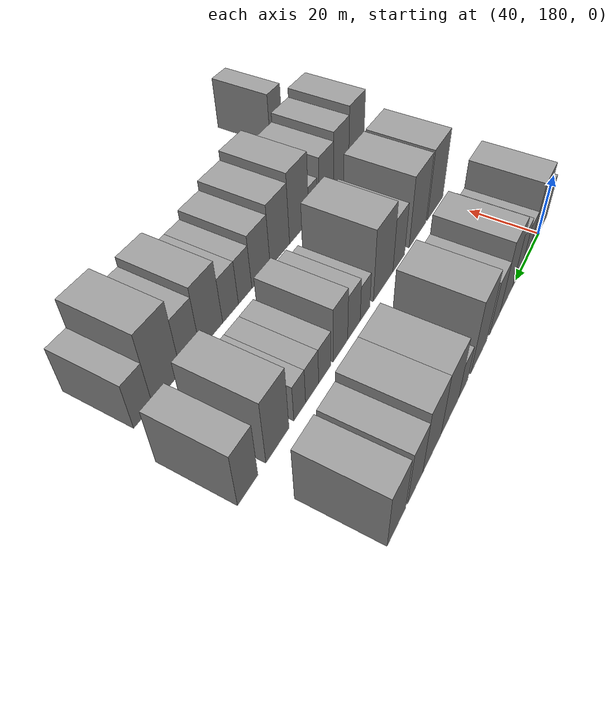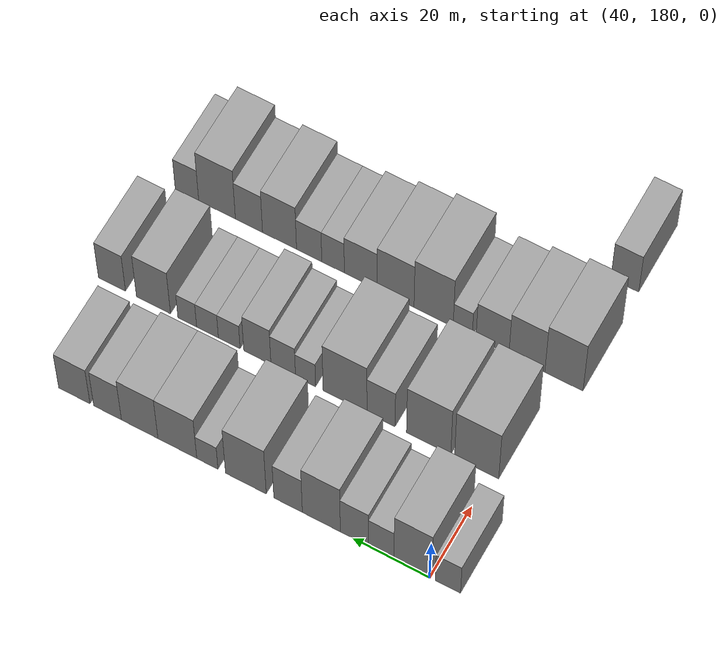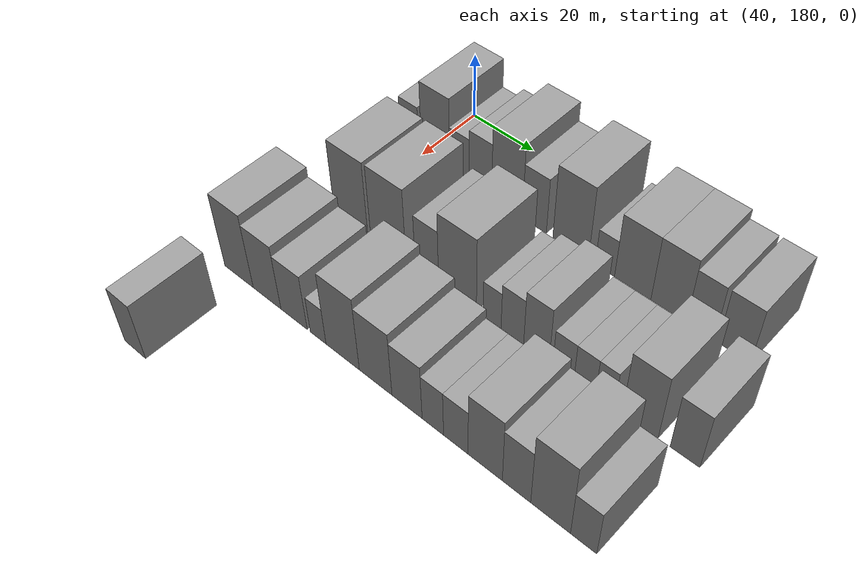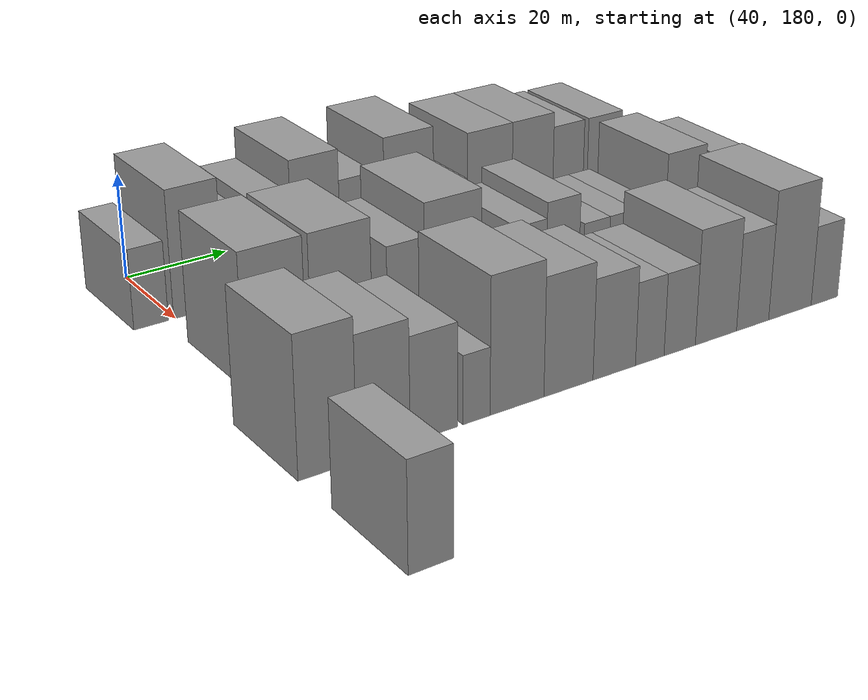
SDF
<sdf version="1.6">
 <world name="default">
  <model name="building_80">
   <static>1</static>
   <pose>50.0000 175.4133 0 0.000000 0.000000 0.000000</pose>
   <link name="link">
    <pose>0 0 7.50 0 0 0</pose>
    <collision name="collision"><geometry><box><size>20.0000 6.4632 15.0000</size></box></geometry></collision>
    <visual name="visual">
     <cast_shadows>0</cast_shadows>
     <geometry><box><size>20.0000 6.4632 15.0000</size></box></geometry>
     <material>
      <script>
       <uri>model://grey_wall/materials/scripts</uri>
       <uri>model://grey_wall/materials/textures</uri>
       <name>vrc/grey_wall</name>
      </script>
     </material>
    </visual>
   </link>
  </model>
  <model name="building_81">
   <static>1</static>
   <pose>50.0000 184.4984 0 0.000000 0.000000 0.000000</pose>
   <link name="link">
    <pose>0 0 12.00 0 0 0</pose>
    <collision name="collision"><geometry><box><size>20.0000 9.7070 24.0000</size></box></geometry></collision>
    <visual name="visual">
     <cast_shadows>0</cast_shadows>
     <geometry><box><size>20.0000 9.7070 24.0000</size></box></geometry>
     <material>
      <script>
       <uri>model://grey_wall/materials/scripts</uri>
       <uri>model://grey_wall/materials/textures</uri>
       <name>vrc/grey_wall</name>
      </script>
     </material>
    </visual>
   </link>
  </model>
  <model name="building_82">
   <static>1</static>
   <pose>50.0000 192.6373 0 0.000000 0.000000 0.000000</pose>
   <link name="link">
    <pose>0 0 7.50 0 0 0</pose>
    <collision name="collision"><geometry><box><size>20.0000 6.5709 15.0000</size></box></geometry></collision>
    <visual name="visual">
     <cast_shadows>0</cast_shadows>
     <geometry><box><size>20.0000 6.5709 15.0000</size></box></geometry>
     <material>
      <script>
       <uri>model://grey_wall/materials/scripts</uri>
       <uri>model://grey_wall/materials/textures</uri>
       <name>vrc/grey_wall</name>
      </script>
     </material>
    </visual>
   </link>
  </model>
  <model name="building_83">
   <static>1</static>
   <pose>50.0000 199.5949 0 0.000000 0.000000 0.000000</pose>
   <link name="link">
    <pose>0 0 9.00 0 0 0</pose>
    <collision name="collision"><geometry><box><size>20.0000 7.3442 18.0000</size></box></geometry></collision>
    <visual name="visual">
     <cast_shadows>0</cast_shadows>
     <geometry><box><size>20.0000 7.3442 18.0000</size></box></geometry>
     <material>
      <script>
       <uri>model://grey_wall/materials/scripts</uri>
       <uri>model://grey_wall/materials/textures</uri>
       <name>vrc/grey_wall</name>
      </script>
     </material>
    </visual>
   </link>
  </model>
  <model name="building_84">
   <static>1</static>
   <pose>50.0000 208.2229 0 0.000000 0.000000 0.000000</pose>
   <link name="link">
    <pose>0 0 12.00 0 0 0</pose>
    <collision name="collision"><geometry><box><size>20.0000 9.9118 24.0000</size></box></geometry></collision>
    <visual name="visual">
     <cast_shadows>0</cast_shadows>
     <geometry><box><size>20.0000 9.9118 24.0000</size></box></geometry>
     <material>
      <script>
       <uri>model://grey_wall/materials/scripts</uri>
       <uri>model://grey_wall/materials/textures</uri>
       <name>vrc/grey_wall</name>
      </script>
     </material>
    </visual>
   </link>
  </model>
  <model name="building_85">
   <static>1</static>
   <pose>50.0000 216.9162 0 0.000000 0.000000 0.000000</pose>
   <link name="link">
    <pose>0 0 9.00 0 0 0</pose>
    <collision name="collision"><geometry><box><size>20.0000 7.4749 18.0000</size></box></geometry></collision>
    <visual name="visual">
     <cast_shadows>0</cast_shadows>
     <geometry><box><size>20.0000 7.4749 18.0000</size></box></geometry>
     <material>
      <script>
       <uri>model://grey_wall/materials/scripts</uri>
       <uri>model://grey_wall/materials/textures</uri>
       <name>vrc/grey_wall</name>
      </script>
     </material>
    </visual>
   </link>
  </model>
  <model name="building_86">
   <static>1</static>
   <pose>50.0000 228.0209 0 0.000000 0.000000 0.000000</pose>
   <link name="link">
    <pose>0 0 12.00 0 0 0</pose>
    <collision name="collision"><geometry><box><size>20.0000 10.7344 24.0000</size></box></geometry></collision>
    <visual name="visual">
     <cast_shadows>0</cast_shadows>
     <geometry><box><size>20.0000 10.7344 24.0000</size></box></geometry>
     <material>
      <script>
       <uri>model://grey_wall/materials/scripts</uri>
       <uri>model://grey_wall/materials/textures</uri>
       <name>vrc/grey_wall</name>
      </script>
     </material>
    </visual>
   </link>
  </model>
  <model name="building_87">
   <static>1</static>
   <pose>50.0000 238.1948 0 0.000000 0.000000 0.000000</pose>
   <link name="link">
    <pose>0 0 6.00 0 0 0</pose>
    <collision name="collision"><geometry><box><size>20.0000 5.6133 12.0000</size></box></geometry></collision>
    <visual name="visual">
     <cast_shadows>0</cast_shadows>
     <geometry><box><size>20.0000 5.6133 12.0000</size></box></geometry>
     <material>
      <script>
       <uri>model://grey_wall/materials/scripts</uri>
       <uri>model://grey_wall/materials/textures</uri>
       <name>vrc/grey_wall</name>
      </script>
     </material>
    </visual>
   </link>
  </model>
  <model name="building_88">
   <static>1</static>
   <pose>50.0000 246.1663 0 0.000000 0.000000 0.000000</pose>
   <link name="link">
    <pose>0 0 10.50 0 0 0</pose>
    <collision name="collision"><geometry><box><size>20.0000 10.3297 21.0000</size></box></geometry></collision>
    <visual name="visual">
     <cast_shadows>0</cast_shadows>
     <geometry><box><size>20.0000 10.3297 21.0000</size></box></geometry>
     <material>
      <script>
       <uri>model://grey_wall/materials/scripts</uri>
       <uri>model://grey_wall/materials/textures</uri>
       <name>vrc/grey_wall</name>
      </script>
     </material>
    </visual>
   </link>
  </model>
  <model name="building_89">
   <static>1</static>
   <pose>50.0000 256.2090 0 0.000000 0.000000 0.000000</pose>
   <link name="link">
    <pose>0 0 10.50 0 0 0</pose>
    <collision name="collision"><geometry><box><size>20.0000 9.7558 21.0000</size></box></geometry></collision>
    <visual name="visual">
     <cast_shadows>0</cast_shadows>
     <geometry><box><size>20.0000 9.7558 21.0000</size></box></geometry>
     <material>
      <script>
       <uri>model://grey_wall/materials/scripts</uri>
       <uri>model://grey_wall/materials/textures</uri>
       <name>vrc/grey_wall</name>
      </script>
     </material>
    </visual>
   </link>
  </model>
  <model name="building_90">
   <static>1</static>
   <pose>50.0000 264.7991 0 0.000000 0.000000 0.000000</pose>
   <link name="link">
    <pose>0 0 9.00 0 0 0</pose>
    <collision name="collision"><geometry><box><size>20.0000 7.4243 18.0000</size></box></geometry></collision>
    <visual name="visual">
     <cast_shadows>0</cast_shadows>
     <geometry><box><size>20.0000 7.4243 18.0000</size></box></geometry>
     <material>
      <script>
       <uri>model://grey_wall/materials/scripts</uri>
       <uri>model://grey_wall/materials/textures</uri>
       <name>vrc/grey_wall</name>
      </script>
     </material>
    </visual>
   </link>
  </model>
  <model name="building_91">
   <static>1</static>
   <pose>50.0000 273.7205 0 0.000000 0.000000 0.000000</pose>
   <link name="link">
    <pose>0 0 9.00 0 0 0</pose>
    <collision name="collision"><geometry><box><size>20.0000 8.4185 18.0000</size></box></geometry></collision>
    <visual name="visual">
     <cast_shadows>0</cast_shadows>
     <geometry><box><size>20.0000 8.4185 18.0000</size></box></geometry>
     <material>
      <script>
       <uri>model://grey_wall/materials/scripts</uri>
       <uri>model://grey_wall/materials/textures</uri>
       <name>vrc/grey_wall</name>
      </script>
     </material>
    </visual>
   </link>
  </model>
  <model name="building_191">
   <static>1</static>
   <pose>79.0000 183.6266 0 0.000000 0.000000 0.000000</pose>
   <link name="link">
    <pose>0 0 12.00 0 0 0</pose>
    <collision name="collision"><geometry><box><size>20.0000 11.4806 24.0000</size></box></geometry></collision>
    <visual name="visual">
     <cast_shadows>0</cast_shadows>
     <geometry><box><size>20.0000 11.4806 24.0000</size></box></geometry>
     <material>
      <script>
       <uri>model://grey_wall/materials/scripts</uri>
       <uri>model://grey_wall/materials/textures</uri>
       <name>vrc/grey_wall</name>
      </script>
     </material>
    </visual>
   </link>
  </model>
  <model name="building_192">
   <static>1</static>
   <pose>79.0000 196.1666 0 0.000000 0.000000 0.000000</pose>
   <link name="link">
    <pose>0 0 12.00 0 0 0</pose>
    <collision name="collision"><geometry><box><size>20.0000 11.5995 24.0000</size></box></geometry></collision>
    <visual name="visual">
     <cast_shadows>0</cast_shadows>
     <geometry><box><size>20.0000 11.5995 24.0000</size></box></geometry>
     <material>
      <script>
       <uri>model://grey_wall/materials/scripts</uri>
       <uri>model://grey_wall/materials/textures</uri>
       <name>vrc/grey_wall</name>
      </script>
     </material>
    </visual>
   </link>
  </model>
  <model name="building_193">
   <static>1</static>
   <pose>79.0000 208.6754 0 0.000000 0.000000 0.000000</pose>
   <link name="link">
    <pose>0 0 9.00 0 0 0</pose>
    <collision name="collision"><geometry><box><size>20.0000 7.4181 18.0000</size></box></geometry></collision>
    <visual name="visual">
     <cast_shadows>0</cast_shadows>
     <geometry><box><size>20.0000 7.4181 18.0000</size></box></geometry>
     <material>
      <script>
       <uri>model://grey_wall/materials/scripts</uri>
       <uri>model://grey_wall/materials/textures</uri>
       <name>vrc/grey_wall</name>
      </script>
     </material>
    </visual>
   </link>
  </model>
  <model name="building_194">
   <static>1</static>
   <pose>79.0000 218.1799 0 0.000000 0.000000 0.000000</pose>
   <link name="link">
    <pose>0 0 12.00 0 0 0</pose>
    <collision name="collision"><geometry><box><size>20.0000 11.5909 24.0000</size></box></geometry></collision>
    <visual name="visual">
     <cast_shadows>0</cast_shadows>
     <geometry><box><size>20.0000 11.5909 24.0000</size></box></geometry>
     <material>
      <script>
       <uri>model://grey_wall/materials/scripts</uri>
       <uri>model://grey_wall/materials/textures</uri>
       <name>vrc/grey_wall</name>
      </script>
     </material>
    </visual>
   </link>
  </model>
  <model name="building_195">
   <static>1</static>
   <pose>79.0000 228.6449 0 0.000000 0.000000 0.000000</pose>
   <link name="link">
    <pose>0 0 6.00 0 0 0</pose>
    <collision name="collision"><geometry><box><size>20.0000 5.3390 12.0000</size></box></geometry></collision>
    <visual name="visual">
     <cast_shadows>0</cast_shadows>
     <geometry><box><size>20.0000 5.3390 12.0000</size></box></geometry>
     <material>
      <script>
       <uri>model://grey_wall/materials/scripts</uri>
       <uri>model://grey_wall/materials/textures</uri>
       <name>vrc/grey_wall</name>
      </script>
     </material>
    </visual>
   </link>
  </model>
  <model name="building_196">
   <static>1</static>
   <pose>79.0000 234.5920 0 0.000000 0.000000 0.000000</pose>
   <link name="link">
    <pose>0 0 7.50 0 0 0</pose>
    <collision name="collision"><geometry><box><size>20.0000 6.5551 15.0000</size></box></geometry></collision>
    <visual name="visual">
     <cast_shadows>0</cast_shadows>
     <geometry><box><size>20.0000 6.5551 15.0000</size></box></geometry>
     <material>
      <script>
       <uri>model://grey_wall/materials/scripts</uri>
       <uri>model://grey_wall/materials/textures</uri>
       <name>vrc/grey_wall</name>
      </script>
     </material>
    </visual>
   </link>
  </model>
  <model name="building_197">
   <static>1</static>
   <pose>79.0000 241.4972 0 0.000000 0.000000 0.000000</pose>
   <link name="link">
    <pose>0 0 9.00 0 0 0</pose>
    <collision name="collision"><geometry><box><size>20.0000 7.2553 18.0000</size></box></geometry></collision>
    <visual name="visual">
     <cast_shadows>0</cast_shadows>
     <geometry><box><size>20.0000 7.2553 18.0000</size></box></geometry>
     <material>
      <script>
       <uri>model://grey_wall/materials/scripts</uri>
       <uri>model://grey_wall/materials/textures</uri>
       <name>vrc/grey_wall</name>
      </script>
     </material>
    </visual>
   </link>
  </model>
  <model name="building_198">
   <static>1</static>
   <pose>79.0000 249.0395 0 0.000000 0.000000 0.000000</pose>
   <link name="link">
    <pose>0 0 6.00 0 0 0</pose>
    <collision name="collision"><geometry><box><size>20.0000 5.8294 12.0000</size></box></geometry></collision>
    <visual name="visual">
     <cast_shadows>0</cast_shadows>
     <geometry><box><size>20.0000 5.8294 12.0000</size></box></geometry>
     <material>
      <script>
       <uri>model://grey_wall/materials/scripts</uri>
       <uri>model://grey_wall/materials/textures</uri>
       <name>vrc/grey_wall</name>
      </script>
     </material>
    </visual>
   </link>
  </model>
  <model name="building_199">
   <static>1</static>
   <pose>79.0000 254.8844 0 0.000000 0.000000 0.000000</pose>
   <link name="link">
    <pose>0 0 6.00 0 0 0</pose>
    <collision name="collision"><geometry><box><size>20.0000 5.8604 12.0000</size></box></geometry></collision>
    <visual name="visual">
     <cast_shadows>0</cast_shadows>
     <geometry><box><size>20.0000 5.8604 12.0000</size></box></geometry>
     <material>
      <script>
       <uri>model://grey_wall/materials/scripts</uri>
       <uri>model://grey_wall/materials/textures</uri>
       <name>vrc/grey_wall</name>
      </script>
     </material>
    </visual>
   </link>
  </model>
  <model name="building_200">
   <static>1</static>
   <pose>79.0000 260.3402 0 0.000000 0.000000 0.000000</pose>
   <link name="link">
    <pose>0 0 6.00 0 0 0</pose>
    <collision name="collision"><geometry><box><size>20.0000 5.0512 12.0000</size></box></geometry></collision>
    <visual name="visual">
     <cast_shadows>0</cast_shadows>
     <geometry><box><size>20.0000 5.0512 12.0000</size></box></geometry>
     <material>
      <script>
       <uri>model://grey_wall/materials/scripts</uri>
       <uri>model://grey_wall/materials/textures</uri>
       <name>vrc/grey_wall</name>
      </script>
     </material>
    </visual>
   </link>
  </model>
  <model name="building_201">
   <static>1</static>
   <pose>79.0000 269.4743 0 0.000000 0.000000 0.000000</pose>
   <link name="link">
    <pose>0 0 10.50 0 0 0</pose>
    <collision name="collision"><geometry><box><size>20.0000 9.2170 21.0000</size></box></geometry></collision>
    <visual name="visual">
     <cast_shadows>0</cast_shadows>
     <geometry><box><size>20.0000 9.2170 21.0000</size></box></geometry>
     <material>
      <script>
       <uri>model://grey_wall/materials/scripts</uri>
       <uri>model://grey_wall/materials/textures</uri>
       <name>vrc/grey_wall</name>
      </script>
     </material>
    </visual>
   </link>
  </model>
  <model name="building_202">
   <static>1</static>
   <pose>79.0000 280.7610 0 0.000000 0.000000 0.000000</pose>
   <link name="link">
    <pose>0 0 9.00 0 0 0</pose>
    <collision name="collision"><geometry><box><size>20.0000 7.3566 18.0000</size></box></geometry></collision>
    <visual name="visual">
     <cast_shadows>0</cast_shadows>
     <geometry><box><size>20.0000 7.3566 18.0000</size></box></geometry>
     <material>
      <script>
       <uri>model://grey_wall/materials/scripts</uri>
       <uri>model://grey_wall/materials/textures</uri>
       <name>vrc/grey_wall</name>
      </script>
     </material>
    </visual>
   </link>
  </model>
  <model name="building_306">
   <static>1</static>
   <pose>108.0000 176.2402 0 0.000000 0.000000 0.000000</pose>
   <link name="link">
    <pose>0 0 12.00 0 0 0</pose>
    <collision name="collision"><geometry><box><size>20.0000 9.9991 24.0000</size></box></geometry></collision>
    <visual name="visual">
     <cast_shadows>0</cast_shadows>
     <geometry><box><size>20.0000 9.9991 24.0000</size></box></geometry>
     <material>
      <script>
       <uri>model://grey_wall/materials/scripts</uri>
       <uri>model://grey_wall/materials/textures</uri>
       <name>vrc/grey_wall</name>
      </script>
     </material>
    </visual>
   </link>
  </model>
  <model name="building_307">
   <static>1</static>
   <pose>108.0000 185.9538 0 0.000000 0.000000 0.000000</pose>
   <link name="link">
    <pose>0 0 10.50 0 0 0</pose>
    <collision name="collision"><geometry><box><size>20.0000 9.4281 21.0000</size></box></geometry></collision>
    <visual name="visual">
     <cast_shadows>0</cast_shadows>
     <geometry><box><size>20.0000 9.4281 21.0000</size></box></geometry>
     <material>
      <script>
       <uri>model://grey_wall/materials/scripts</uri>
       <uri>model://grey_wall/materials/textures</uri>
       <name>vrc/grey_wall</name>
      </script>
     </material>
    </visual>
   </link>
  </model>
  <model name="building_308">
   <static>1</static>
   <pose>108.0000 195.0118 0 0.000000 0.000000 0.000000</pose>
   <link name="link">
    <pose>0 0 9.00 0 0 0</pose>
    <collision name="collision"><geometry><box><size>20.0000 8.6878 18.0000</size></box></geometry></collision>
    <visual name="visual">
     <cast_shadows>0</cast_shadows>
     <geometry><box><size>20.0000 8.6878 18.0000</size></box></geometry>
     <material>
      <script>
       <uri>model://grey_wall/materials/scripts</uri>
       <uri>model://grey_wall/materials/textures</uri>
       <name>vrc/grey_wall</name>
      </script>
     </material>
    </visual>
   </link>
  </model>
  <model name="building_309">
   <static>1</static>
   <pose>108.0000 202.8847 0 0.000000 0.000000 0.000000</pose>
   <link name="link">
    <pose>0 0 6.00 0 0 0</pose>
    <collision name="collision"><geometry><box><size>20.0000 5.0580 12.0000</size></box></geometry></collision>
    <visual name="visual">
     <cast_shadows>0</cast_shadows>
     <geometry><box><size>20.0000 5.0580 12.0000</size></box></geometry>
     <material>
      <script>
       <uri>model://grey_wall/materials/scripts</uri>
       <uri>model://grey_wall/materials/textures</uri>
       <name>vrc/grey_wall</name>
      </script>
     </material>
    </visual>
   </link>
  </model>
  <model name="building_310">
   <static>1</static>
   <pose>108.0000 210.6244 0 0.000000 0.000000 0.000000</pose>
   <link name="link">
    <pose>0 0 12.00 0 0 0</pose>
    <collision name="collision"><geometry><box><size>20.0000 10.4216 24.0000</size></box></geometry></collision>
    <visual name="visual">
     <cast_shadows>0</cast_shadows>
     <geometry><box><size>20.0000 10.4216 24.0000</size></box></geometry>
     <material>
      <script>
       <uri>model://grey_wall/materials/scripts</uri>
       <uri>model://grey_wall/materials/textures</uri>
       <name>vrc/grey_wall</name>
      </script>
     </material>
    </visual>
   </link>
  </model>
  <model name="building_311">
   <static>1</static>
   <pose>108.0000 220.7612 0 0.000000 0.000000 0.000000</pose>
   <link name="link">
    <pose>0 0 10.50 0 0 0</pose>
    <collision name="collision"><geometry><box><size>20.0000 9.8519 21.0000</size></box></geometry></collision>
    <visual name="visual">
     <cast_shadows>0</cast_shadows>
     <geometry><box><size>20.0000 9.8519 21.0000</size></box></geometry>
     <material>
      <script>
       <uri>model://grey_wall/materials/scripts</uri>
       <uri>model://grey_wall/materials/textures</uri>
       <name>vrc/grey_wall</name>
      </script>
     </material>
    </visual>
   </link>
  </model>
  <model name="building_312">
   <static>1</static>
   <pose>108.0000 230.0869 0 0.000000 0.000000 0.000000</pose>
   <link name="link">
    <pose>0 0 9.00 0 0 0</pose>
    <collision name="collision"><geometry><box><size>20.0000 8.7996 18.0000</size></box></geometry></collision>
    <visual name="visual">
     <cast_shadows>0</cast_shadows>
     <geometry><box><size>20.0000 8.7996 18.0000</size></box></geometry>
     <material>
      <script>
       <uri>model://grey_wall/materials/scripts</uri>
       <uri>model://grey_wall/materials/textures</uri>
       <name>vrc/grey_wall</name>
      </script>
     </material>
    </visual>
   </link>
  </model>
  <model name="building_313">
   <static>1</static>
   <pose>108.0000 237.5331 0 0.000000 0.000000 0.000000</pose>
   <link name="link">
    <pose>0 0 7.50 0 0 0</pose>
    <collision name="collision"><geometry><box><size>20.0000 6.0927 15.0000</size></box></geometry></collision>
    <visual name="visual">
     <cast_shadows>0</cast_shadows>
     <geometry><box><size>20.0000 6.0927 15.0000</size></box></geometry>
     <material>
      <script>
       <uri>model://grey_wall/materials/scripts</uri>
       <uri>model://grey_wall/materials/textures</uri>
       <name>vrc/grey_wall</name>
      </script>
     </material>
    </visual>
   </link>
  </model>
  <model name="building_314">
   <static>1</static>
   <pose>108.0000 243.9855 0 0.000000 0.000000 0.000000</pose>
   <link name="link">
    <pose>0 0 7.50 0 0 0</pose>
    <collision name="collision"><geometry><box><size>20.0000 6.8123 15.0000</size></box></geometry></collision>
    <visual name="visual">
     <cast_shadows>0</cast_shadows>
     <geometry><box><size>20.0000 6.8123 15.0000</size></box></geometry>
     <material>
      <script>
       <uri>model://grey_wall/materials/scripts</uri>
       <uri>model://grey_wall/materials/textures</uri>
       <name>vrc/grey_wall</name>
      </script>
     </material>
    </visual>
   </link>
  </model>
  <model name="building_315">
   <static>1</static>
   <pose>108.0000 251.9973 0 0.000000 0.000000 0.000000</pose>
   <link name="link">
    <pose>0 0 10.50 0 0 0</pose>
    <collision name="collision"><geometry><box><size>20.0000 9.2112 21.0000</size></box></geometry></collision>
    <visual name="visual">
     <cast_shadows>0</cast_shadows>
     <geometry><box><size>20.0000 9.2112 21.0000</size></box></geometry>
     <material>
      <script>
       <uri>model://grey_wall/materials/scripts</uri>
       <uri>model://grey_wall/materials/textures</uri>
       <name>vrc/grey_wall</name>
      </script>
     </material>
    </visual>
   </link>
  </model>
  <model name="building_316">
   <static>1</static>
   <pose>108.0000 260.2985 0 0.000000 0.000000 0.000000</pose>
   <link name="link">
    <pose>0 0 9.00 0 0 0</pose>
    <collision name="collision"><geometry><box><size>20.0000 7.3914 18.0000</size></box></geometry></collision>
    <visual name="visual">
     <cast_shadows>0</cast_shadows>
     <geometry><box><size>20.0000 7.3914 18.0000</size></box></geometry>
     <material>
      <script>
       <uri>model://grey_wall/materials/scripts</uri>
       <uri>model://grey_wall/materials/textures</uri>
       <name>vrc/grey_wall</name>
      </script>
     </material>
    </visual>
   </link>
  </model>
  <model name="building_317">
   <static>1</static>
   <pose>108.0000 269.0112 0 0.000000 0.000000 0.000000</pose>
   <link name="link">
    <pose>0 0 12.00 0 0 0</pose>
    <collision name="collision"><geometry><box><size>20.0000 10.0340 24.0000</size></box></geometry></collision>
    <visual name="visual">
     <cast_shadows>0</cast_shadows>
     <geometry><box><size>20.0000 10.0340 24.0000</size></box></geometry>
     <material>
      <script>
       <uri>model://grey_wall/materials/scripts</uri>
       <uri>model://grey_wall/materials/textures</uri>
       <name>vrc/grey_wall</name>
      </script>
     </material>
    </visual>
   </link>
  </model>
  <model name="building_318">
   <static>1</static>
   <pose>108.0000 277.2382 0 0.000000 0.000000 0.000000</pose>
   <link name="link">
    <pose>0 0 7.50 0 0 0</pose>
    <collision name="collision"><geometry><box><size>20.0000 6.4200 15.0000</size></box></geometry></collision>
    <visual name="visual">
     <cast_shadows>0</cast_shadows>
     <geometry><box><size>20.0000 6.4200 15.0000</size></box></geometry>
     <material>
      <script>
       <uri>model://grey_wall/materials/scripts</uri>
       <uri>model://grey_wall/materials/textures</uri>
       <name>vrc/grey_wall</name>
      </script>
     </material>
    </visual>
   </link>
  </model>
  <model name="building_413">
   <static>1</static>
   <pose>137.0000 175.3025 0 0.000000 0.000000 0.000000</pose>
   <link name="link">
    <pose>0 0 9.00 0 0 0</pose>
    <collision name="collision"><geometry><box><size>20.0000 7.3494 18.0000</size></box></geometry></collision>
    <visual name="visual">
     <cast_shadows>0</cast_shadows>
     <geometry><box><size>20.0000 7.3494 18.0000</size></box></geometry>
     <material>
      <script>
       <uri>model://grey_wall/materials/scripts</uri>
       <uri>model://grey_wall/materials/textures</uri>
       <name>vrc/grey_wall</name>
      </script>
     </material>
    </visual>
   </link>
  </model>
 </world>
</sdf>
